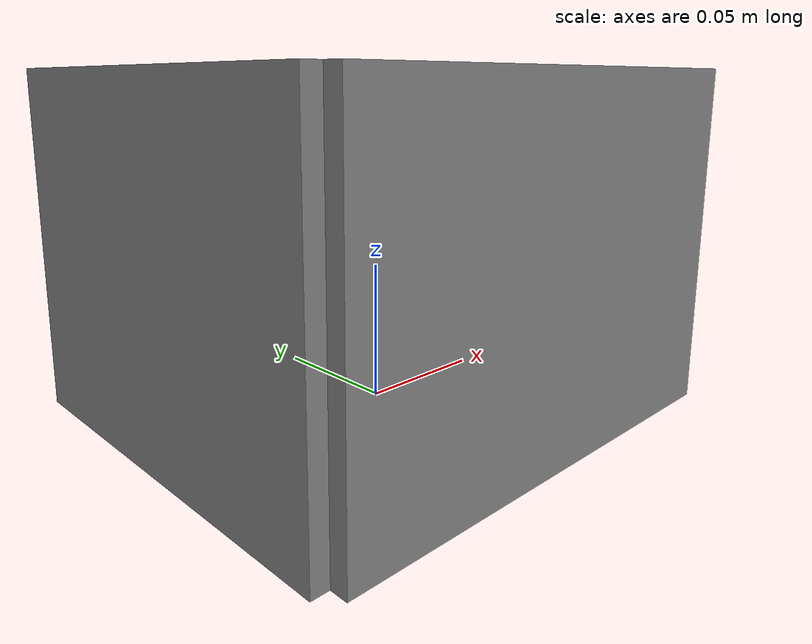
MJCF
<?xml version="1.0" encoding="UTF-8"?>
<!-- Small clean-room receptacle used when the external basket is unavailable. -->
<mujoco model="libero_vlabench_perception_bin_primitive">
  <worldbody>
    <body>
      <body name="object">
        <geom name="bin_floor_visual" type="box" group="1" contype="0" conaffinity="0"
              pos="0 0 0.012" size="0.085 0.075 0.012" rgba="0.18 0.25 0.32 1"/>
        <geom name="bin_front_collision" type="box" group="0" pos="0 -0.075 0.060"
              size="0.085 0.006 0.060" mass="0.04"/>
        <geom name="bin_back_collision" type="box" group="0" pos="0 0.075 0.060"
              size="0.085 0.006 0.060" mass="0.04"/>
        <geom name="bin_left_collision" type="box" group="0" pos="-0.085 0 0.060"
              size="0.006 0.075 0.060" mass="0.04"/>
        <geom name="bin_right_collision" type="box" group="0" pos="0.085 0 0.060"
              size="0.006 0.075 0.060" mass="0.04"/>
        <geom name="bin_front_visual" type="box" group="1" contype="0" conaffinity="0"
              pos="0 -0.075 0.060" size="0.085 0.006 0.060" rgba="0.18 0.25 0.32 1"/>
        <geom name="bin_back_visual" type="box" group="1" contype="0" conaffinity="0"
              pos="0 0.075 0.060" size="0.085 0.006 0.060" rgba="0.18 0.25 0.32 1"/>
        <geom name="bin_left_visual" type="box" group="1" contype="0" conaffinity="0"
              pos="-0.085 0 0.060" size="0.006 0.075 0.060" rgba="0.18 0.25 0.32 1"/>
        <geom name="bin_right_visual" type="box" group="1" contype="0" conaffinity="0"
              pos="0.085 0 0.060" size="0.006 0.075 0.060" rgba="0.18 0.25 0.32 1"/>
        <site name="contain_region" type="box" pos="0 0 0.075" quat="1 0 0 0" size="0.070 0.060 0.055"
              group="3" rgba="0 0 0 0"/>
      </body>
      <site name="bottom_site" pos="0 0 0" size="0.005" rgba="0 0 0 0"/>
      <site name="top_site" pos="0 0 0.135" size="0.005" rgba="0 0 0 0"/>
      <site name="horizontal_radius_site" pos="0.085 0 0" size="0.005" rgba="0 0 0 0"/>
    </body>
  </worldbody>
</mujoco>
